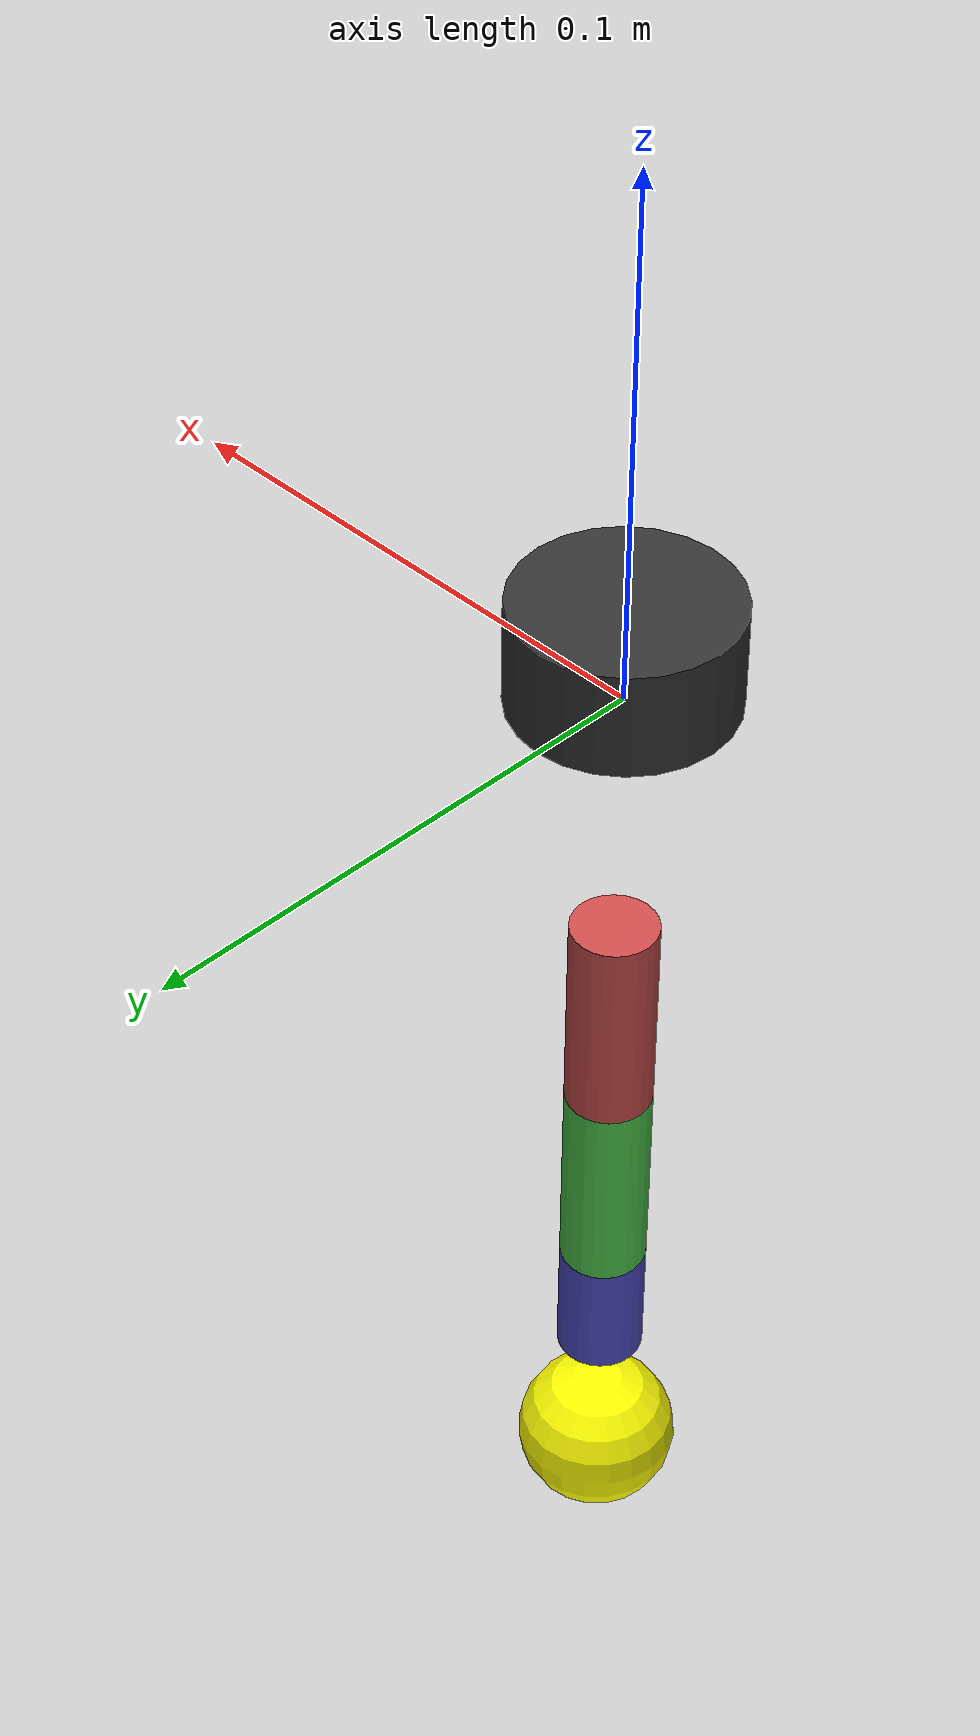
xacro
<?xml version="1.0"?>
<robot xmlns:xacro="http://www.ros.org/wiki/xacro" name="three_dof">

  <xacro:property name="density"     value="800.0"/>
  <xacro:property name="link_len"    value="0.04"/>
  <xacro:property name="link_radius" value="0.008"/>
  <xacro:property name="pi"          value="3.14159265359"/>

  <xacro:macro name="cyl_inertia" params="m r l">
    <inertial>
      <mass value="${m}"/>
      <origin xyz="0 0 ${l/2}" rpy="0 0 0"/>
      <inertia ixx="${m*(3*r*r + l*l)/12.0}"
               iyy="${m*(3*r*r + l*l)/12.0}"
               izz="${m*r*r/2.0}"
               ixy="0" ixz="0" iyz="0"/>
    </inertial>
  </xacro:macro>

  <xacro:macro name="cyl_visual_collision" params="r l rgba">
    <visual>
      <origin xyz="0 0 ${l/2}" rpy="0 0 0"/>
      <geometry><cylinder radius="${r}" length="${l}"/></geometry>
      <material name="link_color"><color rgba="${rgba}"/></material>
    </visual>
    <collision>
      <origin xyz="0 0 ${l/2}" rpy="0 0 0"/>
      <geometry><cylinder radius="${r}" length="${l}"/></geometry>
    </collision>
  </xacro:macro>

  <link name="world_link"/>
  <joint name="world_to_base" type="fixed">
    <parent link="world_link"/>
    <child link="base_link"/>
    <origin xyz="0 0 0" rpy="0 0 0"/>
  </joint>

  <link name="base_link">
    <xacro:cyl_inertia m="0.05" r="0.02" l="0.02"/>
    <xacro:cyl_visual_collision r="0.02" l="0.02" rgba="0.2 0.2 0.2 1"/>
  </link>

  <joint name="j_shoulder" type="revolute">
    <parent link="base_link"/>
    <child link="shoulder_link"/>
    <origin xyz="0 0 -0.05" rpy="3.14159 0 0"/>
    <axis xyz="0 1 0"/>
    <limit lower="${-pi}" upper="${pi}" effort="2.0" velocity="3.0"/>
    <dynamics damping="0.05" friction="0.01"/>
  </joint>

  <link name="shoulder_link">
    <xacro:cyl_inertia m="0.08" r="${link_radius}" l="${link_len}"/>
    <xacro:cyl_visual_collision r="${link_radius}" l="${link_len}" rgba="0.8 0.3 0.3 1"/>
  </link>

  <joint name="j_elbow" type="revolute">
    <parent link="shoulder_link"/>
    <child link="upper_link"/>
    <origin xyz="0 0 ${link_len}" rpy="0 0 0"/>
    <axis xyz="0 1 0"/>
    <limit lower="${-pi}" upper="${pi}" effort="1.5" velocity="3.0"/>
    <dynamics damping="0.05" friction="0.01"/>
  </joint>

  <link name="upper_link">
    <xacro:cyl_inertia m="0.07" r="${link_radius}" l="${link_len}"/>
    <xacro:cyl_visual_collision r="${link_radius}" l="${link_len}" rgba="0.3 0.8 0.3 1"/>
  </link>

  <joint name="j_wrist" type="revolute">
    <parent link="upper_link"/>
    <child link="forearm_link"/>
    <origin xyz="0 0 ${link_len}" rpy="0 0 0"/>
    <axis xyz="0 1 0"/>
    <limit lower="${-pi}" upper="${pi}" effort="1.0" velocity="3.0"/>
    <dynamics damping="0.05" friction="0.01"/>
  </joint>

  <link name="forearm_link">
    <xacro:cyl_inertia m="0.06" r="${link_radius}" l="${link_len * 0.6}"/>
    <xacro:cyl_visual_collision r="${link_radius}" l="${link_len * 0.6}" rgba="0.3 0.3 0.8 1"/>
  </link>

  <joint name="j_ee" type="fixed">
    <parent link="forearm_link"/>
    <child link="ee_link"/>
    <origin xyz="0 0 0.05" rpy="0 0 0"/>
  </joint>

  <link name="ee_link">
    <inertial>
      <mass value="0.02"/>
      <inertia ixx="1e-5" iyy="1e-5" izz="1e-5" ixy="0" ixz="0" iyz="0"/>
    </inertial>
    <visual>
      <geometry><sphere radius="0.015"/></geometry>
      <material name="ee_color"><color rgba="1 1 0 1"/></material>
    </visual>
    <collision><geometry><sphere radius="0.015"/></geometry></collision>
  </link>

  <xacro:arg name="sim_mode" default="gz"/>

  <ros2_control name="three_dof_hw" type="system">
    <hardware>
      <xacro:if value="${'$(arg sim_mode)' == 'gz'}">
        <plugin>gz_ros2_control/GazeboSimSystem</plugin>
      </xacro:if>
      <xacro:unless value="${'$(arg sim_mode)' == 'gz'}">
        <plugin>mock_components/GenericSystem</plugin>
      </xacro:unless>
    </hardware>
    <joint name="j_shoulder">
      <command_interface name="position"/>
      <state_interface name="position"/>
      <state_interface name="velocity"/>
    </joint>
    <joint name="j_elbow">
      <command_interface name="position"/>
      <state_interface name="position"/>
      <state_interface name="velocity"/>
    </joint>
    <joint name="j_wrist">
      <command_interface name="position"/>
      <state_interface name="position"/>
      <state_interface name="velocity"/>
    </joint>
  </ros2_control>

</robot>
